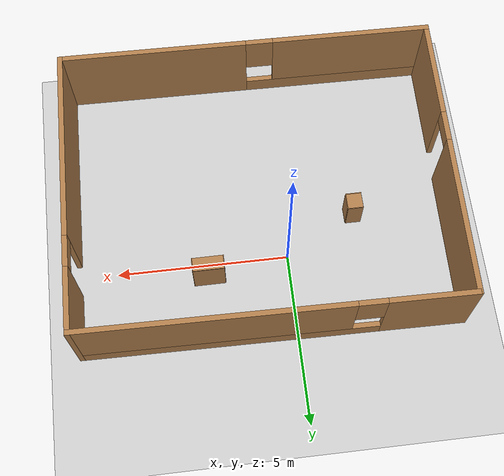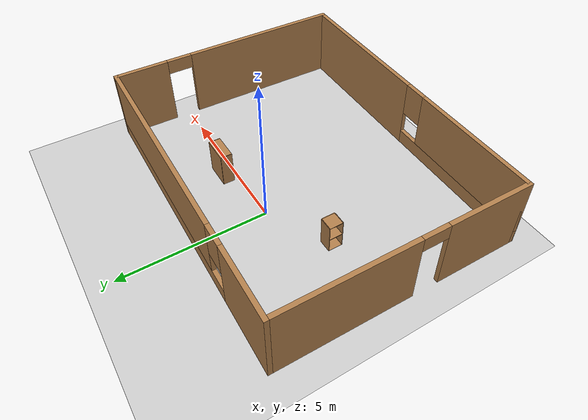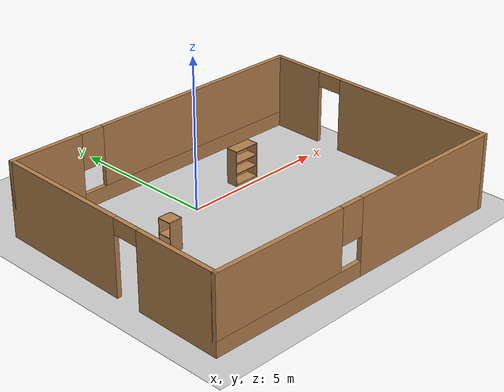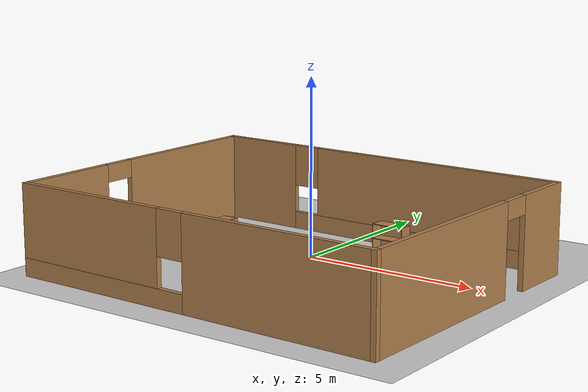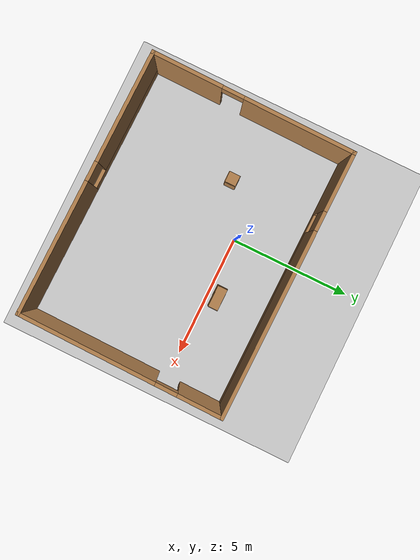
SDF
<sdf version="1.7">
 <world name="default">
  <light name="sun" type="directional">
   <pose>0 0 10 0 -0 0</pose>
   <diffuse>0.8 0.8 0.8 1</diffuse>
   <specular>0.2 0.2 0.2 1</specular>
   <attenuation>
    <range>1000</range>
    <constant>0.9</constant>
    <linear>0.01</linear>
    <quadratic>0.001</quadratic>
   </attenuation>
   <direction>-0.5 0.1 -0.9</direction>
   <spot><inner_angle>0</inner_angle><outer_angle>0</outer_angle><falloff>0</falloff></spot>
  </light>
  <model name="ground_plane">
   <static>1</static>
   <link name="link">
    <collision name="collision">
     <geometry><plane><normal>0 0 1</normal><size>100 100</size></plane></geometry>
     <surface>
      <contact><collide_bitmask>65535</collide_bitmask></contact>
      <friction><ode><mu>100</mu><mu2>50</mu2></ode></friction>
     </surface>
    </collision>
    <visual name="visual">
     <cast_shadows>0</cast_shadows>
     <geometry><plane><normal>0 0 1</normal><size>100 100</size></plane></geometry>
     <material>
      <script><uri>file://media/materials/scripts/gazebo.material</uri><name>Gazebo/Grey</name></script>
     </material>
    </visual>
   </link>
  </model>
  <gravity>0 0 -9.8</gravity>
  <magnetic_field>6e-06 2.3e-05 -4.2e-05</magnetic_field>
  <atmosphere type="adiabatic"/>
  <physics type="ode">
   <max_step_size>0.001</max_step_size>
   <real_time_factor>1</real_time_factor>
   <real_time_update_rate>1000</real_time_update_rate>
  </physics>
  <scene><ambient>0.4 0.4 0.4 1</ambient><background>0.7 0.7 0.7 1</background><shadows>1</shadows></scene>
  <audio><device>default</device></audio>
  <spherical_coordinates>
   <surface_model>EARTH_WGS84</surface_model>
   <latitude_deg>0</latitude_deg>
   <longitude_deg>0</longitude_deg>
   <elevation>0</elevation>
   <heading_deg>0</heading_deg>
  </spherical_coordinates>
  <model name="test">
   <pose>0.647891 -1.73679 0 0 -0 1.55654</pose>
   <link name="Wall_12">
    <pose>4.175 -0 0 0 -0 -1.5708</pose>
    <visual name="Wall_12_Visual_0">
     <pose>-4.24636 0 1.25 0 -0 0</pose>
     <geometry><box><size>2.50728 0.15 2.5</size></box></geometry>
     <material>
      <script><uri>file://media/materials/scripts/gazebo.material</uri><name>Gazebo/Wood</name></script>
      <ambient>1 1 1 1</ambient>
     </material>
     <meta><layer>0</layer></meta>
    </visual>
    <collision name="Wall_12_Collision_0">
     <geometry><box><size>2.50728 0.15 2.5</size></box></geometry>
     <pose>-4.24636 0 1.25 0 -0 0</pose>
    </collision>
    <visual name="Wall_12_Visual_1">
     <pose>1.25364 0 0.25 0 -0 0</pose>
     <geometry><box><size>8.49272 0.15 0.5</size></box></geometry>
     <material>
      <script><uri>file://media/materials/scripts/gazebo.material</uri><name>Gazebo/Wood</name></script>
      <ambient>1 1 1 1</ambient>
     </material>
     <meta><layer>0</layer></meta>
    </visual>
    <collision name="Wall_12_Collision_1">
     <geometry><box><size>8.49272 0.15 0.5</size></box></geometry>
     <pose>1.25364 0 0.25 0 -0 0</pose>
    </collision>
    <visual name="Wall_12_Visual_2">
     <pose>1.65364 0 1.5 0 -0 0</pose>
     <geometry><box><size>7.69272 0.15 2</size></box></geometry>
     <material>
      <script><uri>file://media/materials/scripts/gazebo.material</uri><name>Gazebo/Wood</name></script>
      <ambient>1 1 1 1</ambient>
     </material>
     <meta><layer>0</layer></meta>
    </visual>
    <collision name="Wall_12_Collision_2">
     <geometry><box><size>7.69272 0.15 2</size></box></geometry>
     <pose>1.65364 0 1.5 0 -0 0</pose>
    </collision>
    <visual name="Wall_12_Visual_3">
     <pose>-2.59272 0 1.9 0 -0 0</pose>
     <geometry><box><size>0.8 0.15 1.2</size></box></geometry>
     <material>
      <script><uri>file://media/materials/scripts/gazebo.material</uri><name>Gazebo/Wood</name></script>
      <ambient>1 1 1 1</ambient>
     </material>
     <meta><layer>0</layer></meta>
    </visual>
    <collision name="Wall_12_Collision_3">
     <geometry><box><size>0.8 0.15 1.2</size></box></geometry>
     <pose>-2.59272 0 1.9 0 -0 0</pose>
    </collision>
   </link>
   <link name="Wall_13">
    <pose>-0 -5.425 0 0 -0 3.14159</pose>
    <visual name="Wall_13_Visual_0">
     <pose>-3.29424 0 1.25 0 -0 0</pose>
     <geometry><box><size>1.91153 0.15 2.5</size></box></geometry>
     <material>
      <script><uri>file://media/materials/scripts/gazebo.material</uri><name>Gazebo/Wood</name></script>
      <ambient>1 1 1 1</ambient>
     </material>
     <meta><layer>0</layer></meta>
    </visual>
    <collision name="Wall_13_Collision_0">
     <geometry><box><size>1.91153 0.15 2.5</size></box></geometry>
     <pose>-3.29424 0 1.25 0 -0 0</pose>
    </collision>
    <visual name="Wall_13_Visual_1">
     <pose>1.40576 0 1.25 0 -0 0</pose>
     <geometry><box><size>5.68847 0.15 2.5</size></box></geometry>
     <material>
      <script><uri>file://media/materials/scripts/gazebo.material</uri><name>Gazebo/Wood</name></script>
      <ambient>1 1 1 1</ambient>
     </material>
     <meta><layer>0</layer></meta>
    </visual>
    <collision name="Wall_13_Collision_1">
     <geometry><box><size>5.68847 0.15 2.5</size></box></geometry>
     <pose>1.40576 0 1.25 0 -0 0</pose>
    </collision>
    <visual name="Wall_13_Visual_2">
     <pose>-1.88847 0 2.25 0 -0 0</pose>
     <geometry><box><size>0.9 0.15 0.5</size></box></geometry>
     <material>
      <script><uri>file://media/materials/scripts/gazebo.material</uri><name>Gazebo/Wood</name></script>
      <ambient>1 1 1 1</ambient>
     </material>
     <meta><layer>0</layer></meta>
    </visual>
    <collision name="Wall_13_Collision_2">
     <geometry><box><size>0.9 0.15 0.5</size></box></geometry>
     <pose>-1.88847 0 2.25 0 -0 0</pose>
    </collision>
   </link>
   <link name="Wall_7">
    <pose>-4.175 -0 0 0 -0 1.5708</pose>
    <visual name="Wall_7_Visual_0">
     <pose>-2.73095 0 1.25 0 -0 0</pose>
     <geometry><box><size>5.5381 0.15 2.5</size></box></geometry>
     <material>
      <script><uri>file://media/materials/scripts/gazebo.material</uri><name>Gazebo/Wood</name></script>
      <ambient>1 1 1 1</ambient>
     </material>
     <meta><layer>0</layer></meta>
    </visual>
    <collision name="Wall_7_Collision_0">
     <geometry><box><size>5.5381 0.15 2.5</size></box></geometry>
     <pose>-2.73095 0 1.25 0 -0 0</pose>
    </collision>
    <visual name="Wall_7_Visual_1">
     <pose>2.76905 0 0.25 0 -0 0</pose>
     <geometry><box><size>5.4619 0.15 0.5</size></box></geometry>
     <material>
      <script><uri>file://media/materials/scripts/gazebo.material</uri><name>Gazebo/Wood</name></script>
      <ambient>1 1 1 1</ambient>
     </material>
     <meta><layer>0</layer></meta>
    </visual>
    <collision name="Wall_7_Collision_1">
     <geometry><box><size>5.4619 0.15 0.5</size></box></geometry>
     <pose>2.76905 0 0.25 0 -0 0</pose>
    </collision>
    <visual name="Wall_7_Visual_2">
     <pose>3.16905 0 1.5 0 -0 0</pose>
     <geometry><box><size>4.6619 0.15 2</size></box></geometry>
     <material>
      <script><uri>file://media/materials/scripts/gazebo.material</uri><name>Gazebo/Wood</name></script>
      <ambient>1 1 1 1</ambient>
     </material>
     <meta><layer>0</layer></meta>
    </visual>
    <collision name="Wall_7_Collision_2">
     <geometry><box><size>4.6619 0.15 2</size></box></geometry>
     <pose>3.16905 0 1.5 0 -0 0</pose>
    </collision>
    <visual name="Wall_7_Visual_3">
     <pose>0.438105 0 1.9 0 -0 0</pose>
     <geometry><box><size>0.8 0.15 1.2</size></box></geometry>
     <material>
      <script><uri>file://media/materials/scripts/gazebo.material</uri><name>Gazebo/Wood</name></script>
      <ambient>1 1 1 1</ambient>
     </material>
     <meta><layer>0</layer></meta>
    </visual>
    <collision name="Wall_7_Collision_3">
     <geometry><box><size>0.8 0.15 1.2</size></box></geometry>
     <pose>0.438105 0 1.9 0 -0 0</pose>
    </collision>
   </link>
   <link name="Wall_9">
    <pose>-0 5.425 0 0 -0 0</pose>
    <visual name="Wall_9_Visual_0">
     <pose>-2.76237 0 1.25 0 -0 0</pose>
     <geometry><box><size>2.97525 0.15 2.5</size></box></geometry>
     <material>
      <script><uri>file://media/materials/scripts/gazebo.material</uri><name>Gazebo/Wood</name></script>
      <ambient>1 1 1 1</ambient>
     </material>
     <meta><layer>0</layer></meta>
    </visual>
    <collision name="Wall_9_Collision_0">
     <geometry><box><size>2.97525 0.15 2.5</size></box></geometry>
     <pose>-2.76237 0 1.25 0 -0 0</pose>
    </collision>
    <visual name="Wall_9_Visual_1">
     <pose>1.93763 0 1.25 0 -0 0</pose>
     <geometry><box><size>4.62475 0.15 2.5</size></box></geometry>
     <material>
      <script><uri>file://media/materials/scripts/gazebo.material</uri><name>Gazebo/Wood</name></script>
      <ambient>1 1 1 1</ambient>
     </material>
     <meta><layer>0</layer></meta>
    </visual>
    <collision name="Wall_9_Collision_1">
     <geometry><box><size>4.62475 0.15 2.5</size></box></geometry>
     <pose>1.93763 0 1.25 0 -0 0</pose>
    </collision>
    <visual name="Wall_9_Visual_2">
     <pose>-0.824749 0 2.25 0 -0 0</pose>
     <geometry><box><size>0.9 0.15 0.5</size></box></geometry>
     <material>
      <script><uri>file://media/materials/scripts/gazebo.material</uri><name>Gazebo/Wood</name></script>
      <ambient>1 1 1 1</ambient>
     </material>
     <meta><layer>0</layer></meta>
    </visual>
    <collision name="Wall_9_Collision_2">
     <geometry><box><size>0.9 0.15 0.5</size></box></geometry>
     <pose>-0.824749 0 2.25 0 -0 0</pose>
    </collision>
   </link>
   <static>1</static>
  </model>
  <model name="bookshelf">
   <static>1</static>
   <link name="link">
    <inertial><mass>1</mass></inertial>
    <collision name="back">
     <pose>0 0.005 0.6 0 -0 0</pose>
     <geometry><box><size>0.9 0.01 1.2</size></box></geometry>
    </collision>
    <visual name="visual1">
     <pose>0 0.005 0.6 0 -0 0</pose>
     <geometry><box><size>0.9 0.01 1.2</size></box></geometry>
     <material>
      <script><uri>file://media/materials/scripts/gazebo.material</uri><name>Gazebo/Wood</name></script>
     </material>
    </visual>
    <collision name="left_side">
     <pose>0.45 -0.195 0.6 0 -0 0</pose>
     <geometry><box><size>0.02 0.4 1.2</size></box></geometry>
    </collision>
    <visual name="visual2">
     <pose>0.45 -0.195 0.6 0 -0 0</pose>
     <geometry><box><size>0.02 0.4 1.2</size></box></geometry>
     <material>
      <script><uri>file://media/materials/scripts/gazebo.material</uri><name>Gazebo/Wood</name></script>
     </material>
    </visual>
    <collision name="right_side">
     <pose>-0.45 -0.195 0.6 0 -0 0</pose>
     <geometry><box><size>0.02 0.4 1.2</size></box></geometry>
    </collision>
    <visual name="visual3">
     <pose>-0.45 -0.195 0.6 0 -0 0</pose>
     <geometry><box><size>0.02 0.4 1.2</size></box></geometry>
     <material>
      <script><uri>file://media/materials/scripts/gazebo.material</uri><name>Gazebo/Wood</name></script>
     </material>
    </visual>
    <collision name="bottom">
     <pose>0 -0.195 0.03 0 -0 0</pose>
     <geometry><box><size>0.88 0.4 0.06</size></box></geometry>
    </collision>
    <visual name="visual4">
     <pose>0 -0.195 0.03 0 -0 0</pose>
     <geometry><box><size>0.88 0.4 0.06</size></box></geometry>
     <material>
      <script><uri>file://media/materials/scripts/gazebo.material</uri><name>Gazebo/Wood</name></script>
     </material>
    </visual>
    <collision name="top">
     <pose>0 -0.195 1.19 0 -0 0</pose>
     <geometry><box><size>0.88 0.4 0.02</size></box></geometry>
    </collision>
    <visual name="visual5">
     <pose>0 -0.195 1.19 0 -0 0</pose>
     <geometry><box><size>0.88 0.4 0.02</size></box></geometry>
     <material>
      <script><uri>file://media/materials/scripts/gazebo.material</uri><name>Gazebo/Wood</name></script>
     </material>
    </visual>
    <collision name="low_shelf">
     <pose>0 -0.195 0.43 0 -0 0</pose>
     <geometry><box><size>0.88 0.4 0.02</size></box></geometry>
    </collision>
    <visual name="visual6">
     <pose>0 -0.195 0.43 0 -0 0</pose>
     <geometry><box><size>0.88 0.4 0.02</size></box></geometry>
     <material>
      <script><uri>file://media/materials/scripts/gazebo.material</uri><name>Gazebo/Wood</name></script>
     </material>
    </visual>
    <collision name="high_shelf">
     <pose>0 -0.195 0.8 0 -0 0</pose>
     <geometry><box><size>0.88 0.4 0.02</size></box></geometry>
    </collision>
    <visual name="visual7">
     <pose>0 -0.195 0.8 0 -0 0</pose>
     <geometry><box><size>0.88 0.4 0.02</size></box></geometry>
     <material>
      <script><uri>file://media/materials/scripts/gazebo.material</uri><name>Gazebo/Wood</name></script>
     </material>
    </visual>
   </link>
   <pose>2.3397 0.575033 0 0 -0 0</pose>
  </model>
  <model name="cabinet">
   <static>1</static>
   <link name="cabinet_bottom_plate">
    <inertial>
     <pose>0 0 -1 0 -0 0</pose>
     <inertia><ixx>2.05</ixx><ixy>0</ixy><ixz>0</ixz><iyy>2.05</iyy><iyz>0</iyz><izz>2.05</izz></inertia>
     <mass>25</mass>
    </inertial>
    <collision name="cabinet_bottom_plate_geom">
     <pose>0 0 0.01 0 -0 0</pose>
     <geometry><box><size>0.45 0.45 0.02</size></box></geometry>
    </collision>
    <visual name="cabinet_bottom_plate_geom_visual">
     <pose>0 0 0.01 0 -0 0</pose>
     <geometry><box><size>0.45 0.45 0.02</size></box></geometry>
     <material>
      <script><uri>file://media/materials/scripts/gazebo.material</uri><name>Gazebo/Wood</name></script>
     </material>
    </visual>
    <collision name="cabinet_bottom_plate_geom_cabinet_back_plate">
     <pose>0.235 0 0.51 0 -0 0</pose>
     <geometry><box><size>0.02 0.45 1.02</size></box></geometry>
    </collision>
    <visual name="cabinet_bottom_plate_geom_cabinet_back_plate_visual">
     <pose>0.235 0 0.51 0 -0 0</pose>
     <geometry><box><size>0.02 0.45 1.02</size></box></geometry>
     <material>
      <script><uri>file://media/materials/scripts/gazebo.material</uri><name>Gazebo/Wood</name></script>
     </material>
    </visual>
    <collision name="cabinet_bottom_plate_geom_cabinet_left_plate">
     <pose>0 0.235 0.51 0 -0 0</pose>
     <geometry><box><size>0.45 0.02 1.02</size></box></geometry>
    </collision>
    <visual name="cabinet_bottom_plate_geom_cabinet_left_plate_visual">
     <pose>0 0.235 0.51 0 -0 0</pose>
     <geometry><box><size>0.45 0.02 1.02</size></box></geometry>
     <material>
      <script><uri>file://media/materials/scripts/gazebo.material</uri><name>Gazebo/Wood</name></script>
     </material>
    </visual>
    <collision name="cabinet_bottom_plate_geom_cabinet_middle_plate">
     <pose>0 0 0.51 0 -0 0</pose>
     <geometry><box><size>0.45 0.45 0.02</size></box></geometry>
    </collision>
    <visual name="cabinet_bottom_plate_geom_cabinet_middle_plate_visual">
     <pose>0 0 0.51 0 -0 0</pose>
     <geometry><box><size>0.45 0.45 0.02</size></box></geometry>
     <material>
      <script><uri>file://media/materials/scripts/gazebo.material</uri><name>Gazebo/Wood</name></script>
     </material>
    </visual>
    <collision name="cabinet_bottom_plate_geom_cabinet_right_plate">
     <pose>0 -0.235 0.51 0 -0 0</pose>
     <geometry><box><size>0.45 0.02 1.02</size></box></geometry>
    </collision>
    <visual name="cabinet_bottom_plate_geom_cabinet_right_plate_visual">
     <pose>0 -0.235 0.51 0 -0 0</pose>
     <geometry><box><size>0.45 0.02 1.02</size></box></geometry>
     <material>
      <script><uri>file://media/materials/scripts/gazebo.material</uri><name>Gazebo/Wood</name></script>
     </material>
    </visual>
    <collision name="cabinet_bottom_plate_geom_cabinet_top_plate">
     <pose>0 0 1.01 0 -0 0</pose>
     <geometry><box><size>0.45 0.45 0.02</size></box></geometry>
    </collision>
    <visual name="cabinet_bottom_plate_geom_cabinet_top_plate_visual">
     <pose>0 0 1.01 0 -0 0</pose>
     <geometry><box><size>0.45 0.45 0.02</size></box></geometry>
     <material>
      <script><uri>file://media/materials/scripts/gazebo.material</uri><name>Gazebo/Wood</name></script>
     </material>
    </visual>
   </link>
   <pose>-2.08411 -1.12862 0 0 -0 0</pose>
  </model>
 </world>
</sdf>
